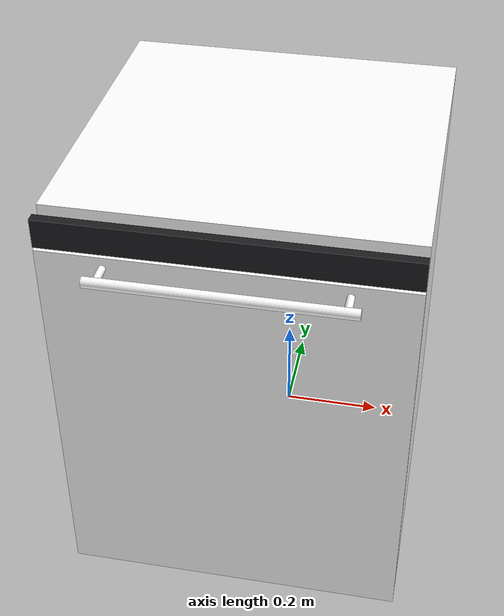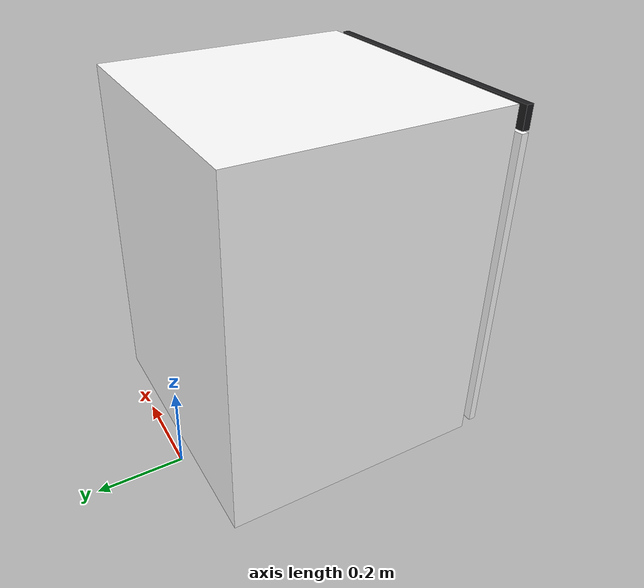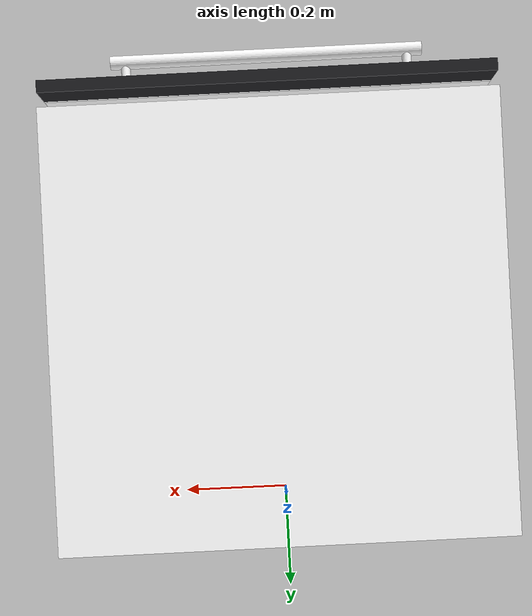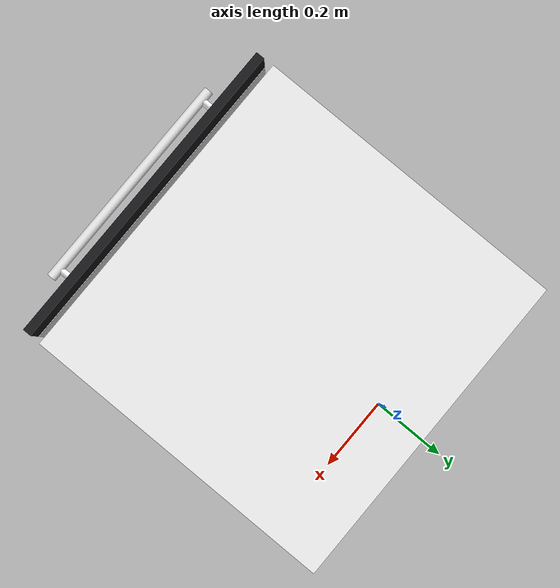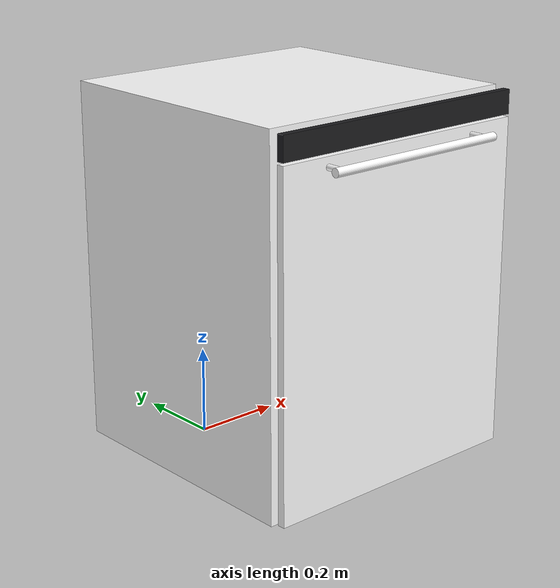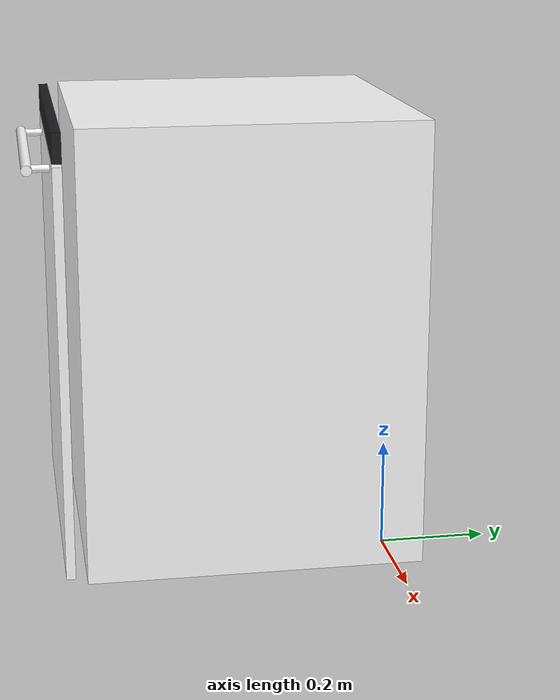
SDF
<?xml version="1.0"?>
<sdf version="1.6">
  <model name="dishwasher">
    <static>true</static>
    <link name="link">
      <visual name="body">
        <pose>0 -0.29 0.4745 0 0 0</pose>
        <geometry><box><size>0.596 0.58 0.771</size></box></geometry>
        <material><pbr><metal><albedo_map>textures/stainless.png</albedo_map><metalness>0.15</metalness><roughness>0.25</roughness></metal></pbr><ambient>1 1 1 1</ambient><diffuse>1 1 1 1</diffuse><specular>1 1 1 1</specular><emissive>0 0 0 1</emissive></material>
      </visual>
      <visual name="door">
        <pose>0 -0.608 0.45 0 0 0</pose>
        <geometry><box><size>0.596 0.016 0.7</size></box></geometry>
        <material><pbr><metal><albedo_map>textures/stainless.png</albedo_map><metalness>0.15</metalness><roughness>0.25</roughness></metal></pbr><ambient>1 1 1 1</ambient><diffuse>1 1 1 1</diffuse><specular>1 1 1 1</specular><emissive>0 0 0 1</emissive></material>
      </visual>
      <visual name="control_panel">
        <pose>0 -0.608 0.83 0 0 0</pose>
        <geometry><box><size>0.596 0.016 0.05</size></box></geometry>
        <material><ambient>0.11 0.11 0.12 1</ambient><diffuse>0.11 0.11 0.12 1</diffuse><specular>0.05 0.05 0.05 1</specular><emissive>0 0 0 1</emissive></material>
      </visual>
      <visual name="handle_bar">
        <pose>0 -0.654 0.78 0 1.5708 0</pose>
        <geometry><cylinder><radius>0.009</radius><length>0.42</length></cylinder></geometry>
        <material><pbr><metal><albedo_map>textures/stainless.png</albedo_map><metalness>0.25</metalness><roughness>0.15</roughness></metal></pbr><ambient>1 1 1 1</ambient><diffuse>1 1 1 1</diffuse><specular>1 1 1 1</specular><emissive>0 0 0 1</emissive></material>
      </visual>
      <visual name="handle_post0">
        <pose>-0.19 -0.635 0.78 1.5708 0 0</pose>
        <geometry><cylinder><radius>0.0063</radius><length>0.038</length></cylinder></geometry>
        <material><pbr><metal><albedo_map>textures/stainless.png</albedo_map><metalness>0.25</metalness><roughness>0.15</roughness></metal></pbr><ambient>1 1 1 1</ambient><diffuse>1 1 1 1</diffuse><specular>1 1 1 1</specular><emissive>0 0 0 1</emissive></material>
      </visual>
      <visual name="handle_post1">
        <pose>0.19 -0.635 0.78 1.5708 0 0</pose>
        <geometry><cylinder><radius>0.0063</radius><length>0.038</length></cylinder></geometry>
        <material><pbr><metal><albedo_map>textures/stainless.png</albedo_map><metalness>0.25</metalness><roughness>0.15</roughness></metal></pbr><ambient>1 1 1 1</ambient><diffuse>1 1 1 1</diffuse><specular>1 1 1 1</specular><emissive>0 0 0 1</emissive></material>
      </visual>
      <collision name="body">
        <pose>0 -0.298 0.4745 0 0 0</pose>
        <geometry><box><size>0.596 0.596 0.771</size></box></geometry>
      </collision>
    </link>
    <allow_auto_disable>1</allow_auto_disable>
  </model>
</sdf>
